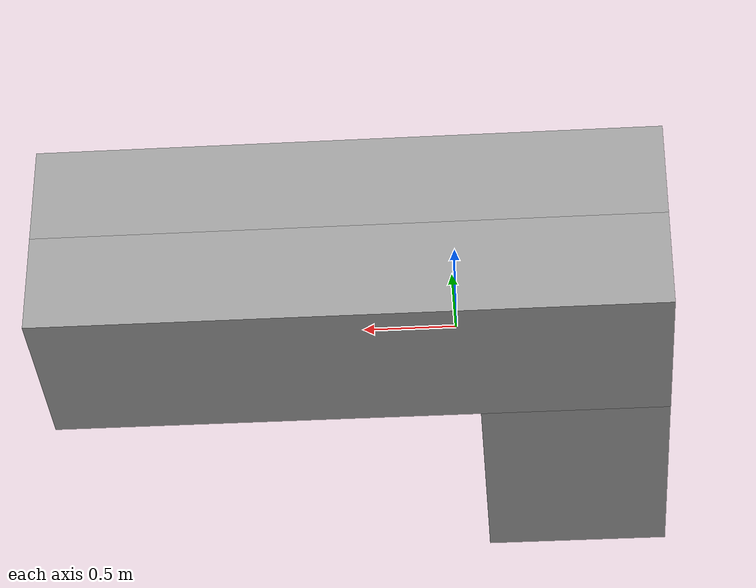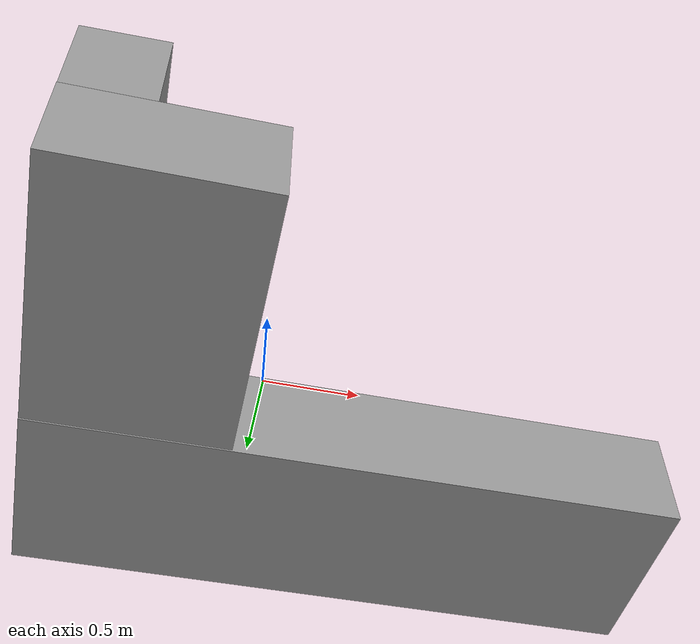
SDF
<?xml version='1.0'?>
<sdf version='1.7'>
  <model name='Sofa'>
    <link name='link_0'>
      <inertial>
        <mass>1.78921</mass>
        <inertia>
          <ixx>0.19365</ixx>
          <ixy>0</ixy>
          <ixz>0</ixz>
          <iyy>1.64196</iyy>
          <iyz>0</iyz>
          <izz>1.74651</izz>
        </inertia>
        <pose>0 0 0 0 -0 0</pose>
      </inertial>
      <pose>0.515913 0.4827 -0.27126 0 -0 0</pose>
      <visual name='visual'>
        <pose>0 0 0 0 -0 0</pose>
        <geometry>
          <box>
            <size>3.27317 1 0.546616</size>
          </box>
        </geometry>
        <material>
          <lighting>1</lighting>
          <script>
            <uri>file://media/materials/scripts/gazebo.material</uri>
            <name>Gazebo/Grey</name>
          </script>
          <shader type='pixel'/>
          <emissive>0 0 0 1</emissive>
        </material>
        <transparency>0</transparency>
        <cast_shadows>1</cast_shadows>
      </visual>
      <collision name='collision'>
        <laser_retro>0</laser_retro>
        <max_contacts>10</max_contacts>
        <pose>0 0 0 0 -0 0</pose>
        <geometry>
          <box>
            <size>3.27317 1 0.546616</size>
          </box>
        </geometry>
        <surface>
          <friction>
            <ode>
              <mu>1</mu>
              <mu2>1</mu2>
              <fdir1>0 0 0</fdir1>
              <slip1>0</slip1>
              <slip2>0</slip2>
            </ode>
            <torsional>
              <coefficient>1</coefficient>
              <patch_radius>0</patch_radius>
              <surface_radius>0</surface_radius>
              <use_patch_radius>1</use_patch_radius>
              <ode>
                <slip>0</slip>
              </ode>
            </torsional>
          </friction>
          <bounce>
            <restitution_coefficient>0</restitution_coefficient>
            <threshold>1e+06</threshold>
          </bounce>
          <contact>
            <collide_without_contact>0</collide_without_contact>
            <collide_without_contact_bitmask>1</collide_without_contact_bitmask>
            <collide_bitmask>1</collide_bitmask>
            <ode>
              <soft_cfm>0</soft_cfm>
              <soft_erp>0.2</soft_erp>
              <kp>1e+13</kp>
              <kd>1</kd>
              <max_vel>0.01</max_vel>
              <min_depth>0</min_depth>
            </ode>
            <bullet>
              <split_impulse>1</split_impulse>
              <split_impulse_penetration_threshold>-0.01</split_impulse_penetration_threshold>
              <soft_cfm>0</soft_cfm>
              <soft_erp>0.2</soft_erp>
              <kp>1e+13</kp>
              <kd>1</kd>
            </bullet>
          </contact>
        </surface>
      </collision>
    </link>
    <link name='link_0_clone'>
      <inertial>
        <mass>0.763707</mass>
        <inertia>
          <ixx>0.0306107</ixx>
          <ixy>0</ixy>
          <ixz>0</ixz>
          <iyy>0.700856</iyy>
          <iyz>0</iyz>
          <izz>0.693436</izz>
        </inertia>
        <pose>0 0 0 0 -0 0</pose>
      </inertial>
      <pose>0.515913 0.769281 0.275356 0 -0 0</pose>
      <visual name='visual'>
        <pose>0 0 0 0 -0 0</pose>
        <geometry>
          <box>
            <size>3.27317 0.426838 0.546616</size>
          </box>
        </geometry>
        <material>
          <lighting>1</lighting>
          <script>
            <uri>file://media/materials/scripts/gazebo.material</uri>
            <name>Gazebo/Grey</name>
          </script>
          <shader type='pixel'/>
          <emissive>0 0 0 1</emissive>
        </material>
        <transparency>0</transparency>
        <cast_shadows>1</cast_shadows>
      </visual>
      <collision name='collision'>
        <laser_retro>0</laser_retro>
        <max_contacts>10</max_contacts>
        <pose>0 0 0 0 -0 0</pose>
        <geometry>
          <box>
            <size>3.27317 0.426838 0.546616</size>
          </box>
        </geometry>
        <surface>
          <friction>
            <ode>
              <mu>1</mu>
              <mu2>1</mu2>
              <fdir1>0 0 0</fdir1>
              <slip1>0</slip1>
              <slip2>0</slip2>
            </ode>
            <torsional>
              <coefficient>1</coefficient>
              <patch_radius>0</patch_radius>
              <surface_radius>0</surface_radius>
              <use_patch_radius>1</use_patch_radius>
              <ode>
                <slip>0</slip>
              </ode>
            </torsional>
          </friction>
          <bounce>
            <restitution_coefficient>0</restitution_coefficient>
            <threshold>1e+06</threshold>
          </bounce>
          <contact>
            <collide_without_contact>0</collide_without_contact>
            <collide_without_contact_bitmask>1</collide_without_contact_bitmask>
            <collide_bitmask>1</collide_bitmask>
            <ode>
              <soft_cfm>0</soft_cfm>
              <soft_erp>0.2</soft_erp>
              <kp>1e+13</kp>
              <kd>1</kd>
              <max_vel>0.01</max_vel>
              <min_depth>0</min_depth>
            </ode>
            <bullet>
              <split_impulse>1</split_impulse>
              <split_impulse_penetration_threshold>-0.01</split_impulse_penetration_threshold>
              <soft_cfm>0</soft_cfm>
              <soft_erp>0.2</soft_erp>
              <kp>1e+13</kp>
              <kd>1</kd>
            </bullet>
          </contact>
        </surface>
      </collision>
    </link>
    <link name='link_0_clone_clone'>
      <inertial>
        <mass>0.450951</mass>
        <inertia>
          <ixx>0.0180749</ixx>
          <ixy>0</ixy>
          <ixz>0</ixz>
          <iyy>0.151605</iyy>
          <iyz>0</iyz>
          <izz>0.147223</izz>
        </inertia>
        <pose>0 0 0 0 -0 0</pose>
      </inertial>
      <pose>-0.891825 -0.505668 0.267165 0 -0 1.5548</pose>
      <visual name='visual'>
        <pose>0 0 0 0 -0 0</pose>
        <geometry>
          <box>
            <size>1.93274 0.426838 0.546616</size>
          </box>
        </geometry>
        <material>
          <lighting>1</lighting>
          <script>
            <uri>file://media/materials/scripts/gazebo.material</uri>
            <name>Gazebo/Grey</name>
          </script>
          <shader type='pixel'/>
          <emissive>0 0 0 1</emissive>
        </material>
        <transparency>0</transparency>
        <cast_shadows>1</cast_shadows>
      </visual>
      <collision name='collision'>
        <laser_retro>0</laser_retro>
        <max_contacts>10</max_contacts>
        <pose>0 0 0 0 -0 0</pose>
        <geometry>
          <box>
            <size>1.93274 0.426838 0.546616</size>
          </box>
        </geometry>
        <surface>
          <friction>
            <ode>
              <mu>1</mu>
              <mu2>1</mu2>
              <fdir1>0 0 0</fdir1>
              <slip1>0</slip1>
              <slip2>0</slip2>
            </ode>
            <torsional>
              <coefficient>1</coefficient>
              <patch_radius>0</patch_radius>
              <surface_radius>0</surface_radius>
              <use_patch_radius>1</use_patch_radius>
              <ode>
                <slip>0</slip>
              </ode>
            </torsional>
          </friction>
          <bounce>
            <restitution_coefficient>0</restitution_coefficient>
            <threshold>1e+06</threshold>
          </bounce>
          <contact>
            <collide_without_contact>0</collide_without_contact>
            <collide_without_contact_bitmask>1</collide_without_contact_bitmask>
            <collide_bitmask>1</collide_bitmask>
            <ode>
              <soft_cfm>0</soft_cfm>
              <soft_erp>0.2</soft_erp>
              <kp>1e+13</kp>
              <kd>1</kd>
              <max_vel>0.01</max_vel>
              <min_depth>0</min_depth>
            </ode>
            <bullet>
              <split_impulse>1</split_impulse>
              <split_impulse_penetration_threshold>-0.01</split_impulse_penetration_threshold>
              <soft_cfm>0</soft_cfm>
              <soft_erp>0.2</soft_erp>
              <kp>1e+13</kp>
              <kd>1</kd>
            </bullet>
          </contact>
        </surface>
      </collision>
    </link>
    <link name='link_1'>
      <inertial>
        <mass>0.773084</mass>
        <inertia>
          <ixx>0.155067</ixx>
          <ixy>0</ixy>
          <ixz>0</ixz>
          <iyy>0.0825363</iyy>
          <iyz>0</iyz>
          <izz>0.201378</izz>
        </inertia>
        <pose>0 0 0 0 -0 0</pose>
      </inertial>
      <pose>-0.620672 -0.746314 -0.27126 0 -0 0</pose>
      <visual name='visual'>
        <pose>0 0 0 0 -0 0</pose>
        <geometry>
          <box>
            <size>1 1.45803 0.530235</size>
          </box>
        </geometry>
        <material>
          <lighting>1</lighting>
          <script>
            <uri>file://media/materials/scripts/gazebo.material</uri>
            <name>Gazebo/Grey</name>
          </script>
          <shader type='pixel'/>
          <emissive>0 0 0 1</emissive>
        </material>
        <transparency>0</transparency>
        <cast_shadows>1</cast_shadows>
      </visual>
      <collision name='collision'>
        <laser_retro>0</laser_retro>
        <max_contacts>10</max_contacts>
        <pose>0 0 0 0 -0 0</pose>
        <geometry>
          <box>
            <size>1 1.45803 0.530235</size>
          </box>
        </geometry>
        <surface>
          <friction>
            <ode>
              <mu>1</mu>
              <mu2>1</mu2>
              <fdir1>0 0 0</fdir1>
              <slip1>0</slip1>
              <slip2>0</slip2>
            </ode>
            <torsional>
              <coefficient>1</coefficient>
              <patch_radius>0</patch_radius>
              <surface_radius>0</surface_radius>
              <use_patch_radius>1</use_patch_radius>
              <ode>
                <slip>0</slip>
              </ode>
            </torsional>
          </friction>
          <bounce>
            <restitution_coefficient>0</restitution_coefficient>
            <threshold>1e+06</threshold>
          </bounce>
          <contact>
            <collide_without_contact>0</collide_without_contact>
            <collide_without_contact_bitmask>1</collide_without_contact_bitmask>
            <collide_bitmask>1</collide_bitmask>
            <ode>
              <soft_cfm>0</soft_cfm>
              <soft_erp>0.2</soft_erp>
              <kp>1e+13</kp>
              <kd>1</kd>
              <max_vel>0.01</max_vel>
              <min_depth>0</min_depth>
            </ode>
            <bullet>
              <split_impulse>1</split_impulse>
              <split_impulse_penetration_threshold>-0.01</split_impulse_penetration_threshold>
              <soft_cfm>0</soft_cfm>
              <soft_erp>0.2</soft_erp>
              <kp>1e+13</kp>
              <kd>1</kd>
            </bullet>
          </contact>
        </surface>
      </collision>
    </link>
    <joint name='link_0_JOINT_0' type='revolute'>
      <parent>link_0</parent>
      <child>link_1</child>
      <pose>0 0 0 0 -0 0</pose>
      <axis>
        <xyz>1 0 0</xyz>
        <limit>
          <lower>-1.79769e+308</lower>
          <upper>1.79769e+308</upper>
          <effort>-1</effort>
          <velocity>-1</velocity>
        </limit>
        <dynamics>
          <spring_reference>0</spring_reference>
          <spring_stiffness>0</spring_stiffness>
          <damping>0</damping>
        </dynamics>
      </axis>
      <physics>
        <ode>
          <limit>
            <cfm>0</cfm>
            <erp>0.2</erp>
          </limit>
          <suspension>
            <cfm>0</cfm>
            <erp>0.2</erp>
          </suspension>
        </ode>
      </physics>
    </joint>
    <joint name='link_0_JOINT_2' type='revolute'>
      <parent>link_0</parent>
      <child>link_0_clone</child>
      <pose>0 0 0 0 -0 0</pose>
      <axis>
        <xyz>1 0 0</xyz>
        <limit>
          <lower>-1.79769e+308</lower>
          <upper>1.79769e+308</upper>
          <effort>-1</effort>
          <velocity>-1</velocity>
        </limit>
        <dynamics>
          <spring_reference>0</spring_reference>
          <spring_stiffness>0</spring_stiffness>
          <damping>0</damping>
        </dynamics>
      </axis>
      <physics>
        <ode>
          <limit>
            <cfm>0</cfm>
            <erp>0.2</erp>
          </limit>
          <suspension>
            <cfm>0</cfm>
            <erp>0.2</erp>
          </suspension>
        </ode>
      </physics>
    </joint>
    <joint name='link_1_JOINT_4' type='revolute'>
      <parent>link_1</parent>
      <child>link_0_clone_clone</child>
      <pose>0 0 0 0 -0 0</pose>
      <axis>
        <xyz>1 0 0</xyz>
        <limit>
          <lower>-1.79769e+308</lower>
          <upper>1.79769e+308</upper>
          <effort>-1</effort>
          <velocity>-1</velocity>
        </limit>
        <dynamics>
          <spring_reference>0</spring_reference>
          <spring_stiffness>0</spring_stiffness>
          <damping>0</damping>
        </dynamics>
      </axis>
      <physics>
        <ode>
          <limit>
            <cfm>0</cfm>
            <erp>0.2</erp>
          </limit>
          <suspension>
            <cfm>0</cfm>
            <erp>0.2</erp>
          </suspension>
        </ode>
      </physics>
    </joint>
    <static>0</static>
    <allow_auto_disable>1</allow_auto_disable>
  </model>
</sdf>
